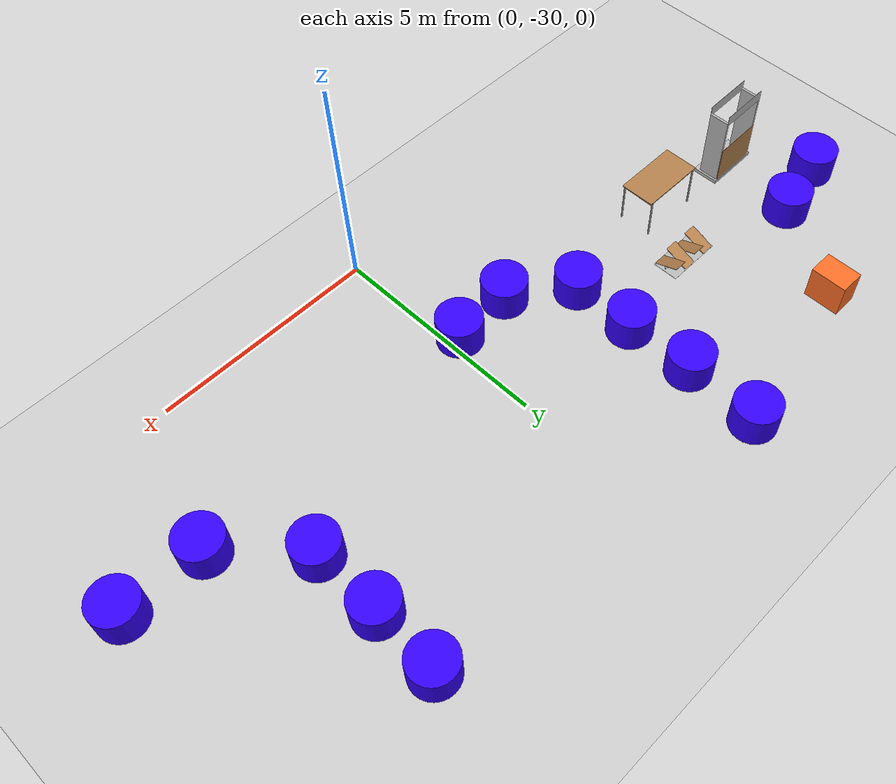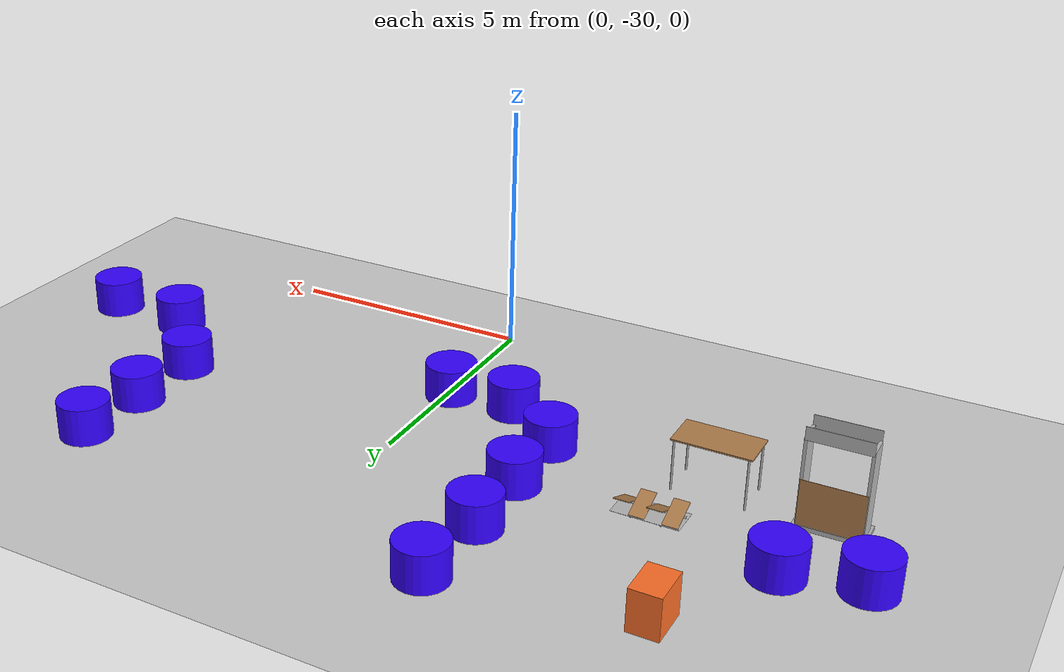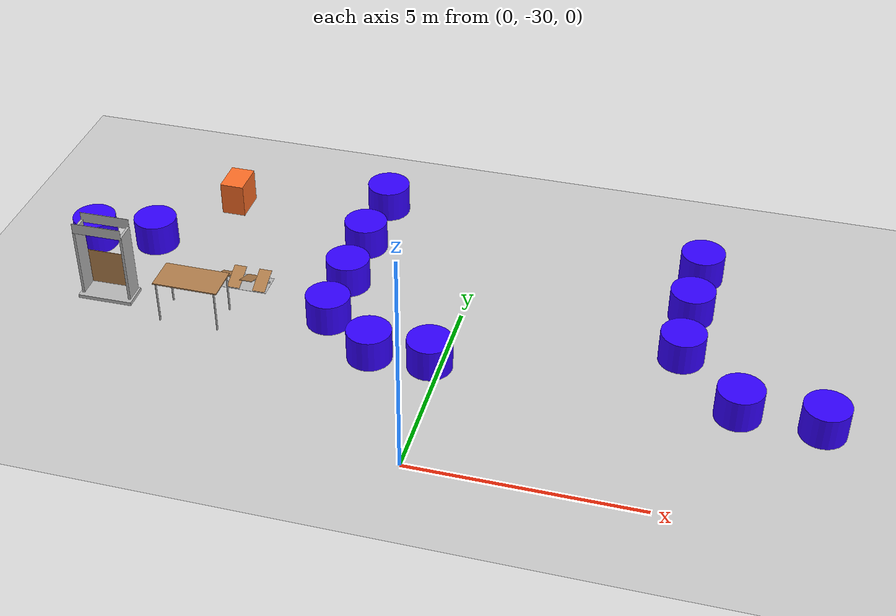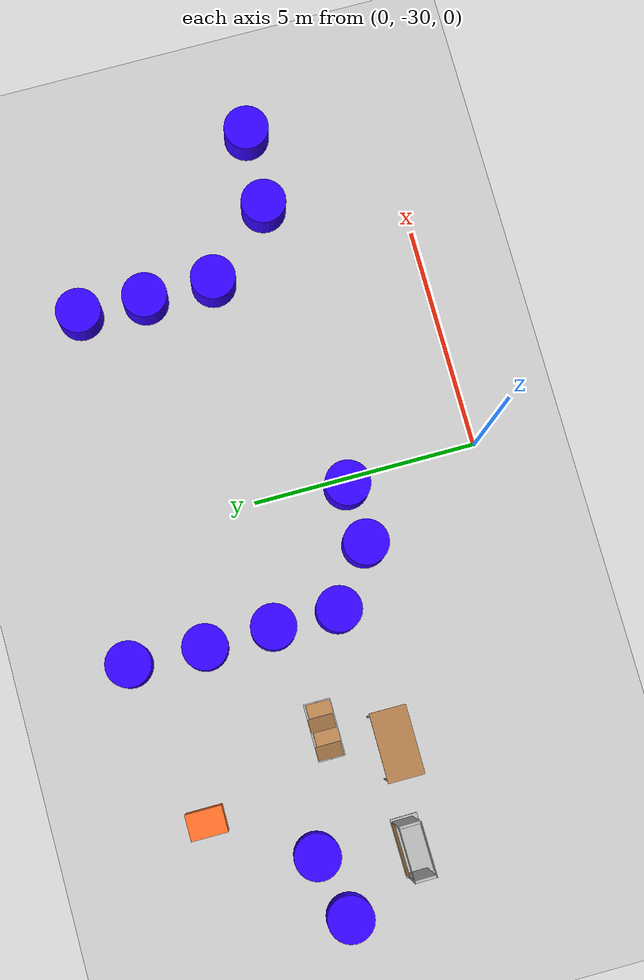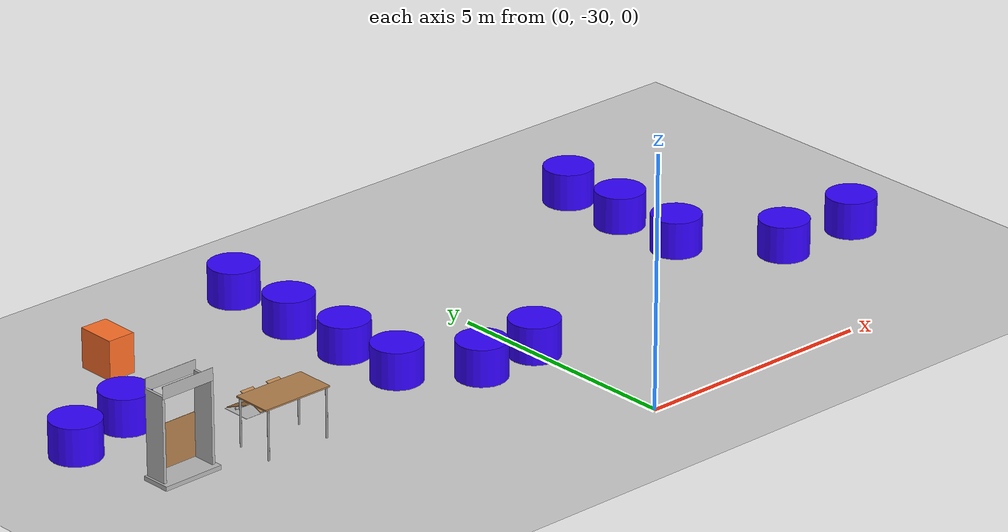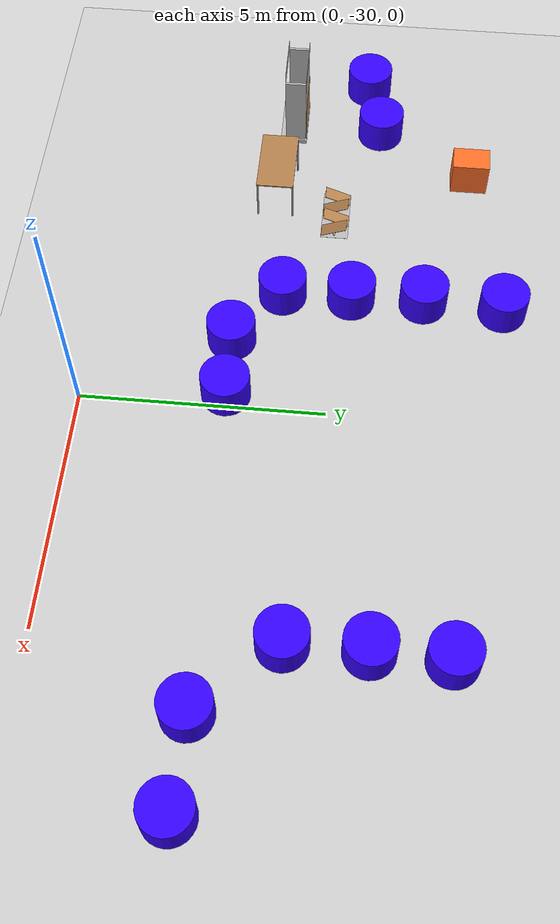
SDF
<sdf version="1.7">
 <world name="default">
  <model name="ground_plane">
   <static>1</static>
   <link name="link">
    <collision name="collision">
     <geometry><plane><normal>0 0 1</normal><size>100 100</size></plane></geometry>
     <surface>
      <contact><collide_bitmask>65535</collide_bitmask></contact>
      <friction><ode><mu>100</mu><mu2>50</mu2></ode></friction>
     </surface>
    </collision>
    <visual name="visual">
     <cast_shadows>0</cast_shadows>
     <geometry><plane><normal>0 0 1</normal><size>100 100</size></plane></geometry>
     <material>
      <script><uri>file://media/materials/scripts/gazebo.material</uri><name>Gazebo/Grey</name></script>
     </material>
    </visual>
   </link>
  </model>
  <model name="table">
   <static>1</static>
   <link name="link">
    <collision name="surface">
     <pose>0 0 1 0 -0 0</pose>
     <geometry><box><size>1.5 0.8 0.03</size></box></geometry>
     <surface><friction><ode><mu>0.6</mu><mu2>0.6</mu2></ode></friction></surface>
    </collision>
    <visual name="visual1">
     <pose>0 0 1 0 -0 0</pose>
     <geometry><box><size>1.5 0.8 0.03</size></box></geometry>
     <material>
      <script><uri>file://media/materials/scripts/gazebo.material</uri><name>Gazebo/Wood</name></script>
     </material>
    </visual>
    <collision name="front_left_leg">
     <pose>0.68 0.38 0.5 0 -0 0</pose>
     <geometry><cylinder><radius>0.02</radius><length>1</length></cylinder></geometry>
    </collision>
    <visual name="front_left_leg">
     <pose>0.68 0.38 0.5 0 -0 0</pose>
     <geometry><cylinder><radius>0.02</radius><length>1</length></cylinder></geometry>
     <material>
      <script><uri>file://media/materials/scripts/gazebo.material</uri><name>Gazebo/Grey</name></script>
     </material>
    </visual>
    <collision name="front_right_leg">
     <pose>0.68 -0.38 0.5 0 -0 0</pose>
     <geometry><cylinder><radius>0.02</radius><length>1</length></cylinder></geometry>
    </collision>
    <visual name="front_right_leg">
     <pose>0.68 -0.38 0.5 0 -0 0</pose>
     <geometry><cylinder><radius>0.02</radius><length>1</length></cylinder></geometry>
     <material>
      <script><uri>file://media/materials/scripts/gazebo.material</uri><name>Gazebo/Grey</name></script>
     </material>
    </visual>
    <collision name="back_right_leg">
     <pose>-0.68 -0.38 0.5 0 -0 0</pose>
     <geometry><cylinder><radius>0.02</radius><length>1</length></cylinder></geometry>
    </collision>
    <visual name="back_right_leg">
     <pose>-0.68 -0.38 0.5 0 -0 0</pose>
     <geometry><cylinder><radius>0.02</radius><length>1</length></cylinder></geometry>
     <material>
      <script><uri>file://media/materials/scripts/gazebo.material</uri><name>Gazebo/Grey</name></script>
     </material>
    </visual>
    <collision name="back_left_leg">
     <pose>-0.68 0.38 0.5 0 -0 0</pose>
     <geometry><cylinder><radius>0.02</radius><length>1</length></cylinder></geometry>
    </collision>
    <visual name="back_left_leg">
     <pose>-0.68 0.38 0.5 0 -0 0</pose>
     <geometry><cylinder><radius>0.02</radius><length>1</length></cylinder></geometry>
     <material>
      <script><uri>file://media/materials/scripts/gazebo.material</uri><name>Gazebo/Grey</name></script>
     </material>
    </visual>
   </link>
   <pose>-5.79541 -26.5102 0 0 -0 0</pose>
  </model>
  <model name="frc2016_chevaldefrise">
   <link name="base">
    <inertial>
     <mass>10</mass>
     <pose>0 0 0.15672 0 -0 0</pose>
     <inertia><ixx>0.380221</ixx><ixy>0</ixy><ixz>0</ixz><iyy>1.43365</iyy><iyz>0</iyz><izz>1.64745</izz></inertia>
    </inertial>
    <visual name="platform">
     <pose>0 0 0.06968 0 -0 0</pose>
     <geometry><box><size>1.27 0.5969 0.003175</size></box></geometry>
    </visual>
    <collision name="platform">
     <pose>0 0 0.06968 0 -0 0</pose>
     <geometry><box><size>1.27 0.5969 0.003175</size></box></geometry>
    </collision>
    <visual name="bar">
     <pose>0 0 0.16855 0 1.5707 0</pose>
     <geometry><cylinder><radius>0.02108</radius><length>1.273</length></cylinder></geometry>
    </visual>
    <collision name="bar">
     <pose>0 0 0.16855 0 1.5707 0</pose>
     <geometry><cylinder><radius>0.02108</radius><length>1.27</length></cylinder></geometry>
    </collision>
    <visual name="castor1">
     <pose>-0.45653 -0.16581 0.03175 0 -0 0</pose>
     <geometry><sphere><radius>0.03175</radius></sphere></geometry>
    </visual>
    <collision name="castor1">
     <pose>-0.45653 -0.16581 0.03175 0 -0 0</pose>
     <geometry><sphere><radius>0.03175</radius></sphere></geometry>
    </collision>
    <visual name="castor2">
     <pose>-0.27855 0.21408 0.03175 0 -0 0</pose>
     <geometry><sphere><radius>0.03175</radius></sphere></geometry>
    </visual>
    <collision name="castor2">
     <pose>-0.27855 0.21408 0.03175 0 -0 0</pose>
     <geometry><sphere><radius>0.03175</radius></sphere></geometry>
    </collision>
    <visual name="castor3">
     <pose>0.28191 0.21419 0.03175 0 -0 0</pose>
     <geometry><sphere><radius>0.03175</radius></sphere></geometry>
    </visual>
    <collision name="castor3">
     <pose>0.28191 0.21419 0.03175 0 -0 0</pose>
     <geometry><sphere><radius>0.03175</radius></sphere></geometry>
    </collision>
    <visual name="castor4">
     <pose>0.45965 -0.16602 0.03175 0 -0 0</pose>
     <geometry><sphere><radius>0.03175</radius></sphere></geometry>
    </visual>
    <collision name="castor4">
     <pose>0.45965 -0.16602 0.03175 0 -0 0</pose>
     <geometry><sphere><radius>0.03175</radius></sphere></geometry>
    </collision>
   </link>
   <link name="slant1">
    <pose>-0.4572 0.01307 0.1997 -0.39732 0 0</pose>
    <inertial>
     <pose>0 0.1 0 0 -0 0</pose>
     <mass>2</mass>
     <inertia>
      <ixx>0.0606857</ixx>
      <ixy>0</ixy>
      <ixz>0</ixz>
      <iyy>0.0148723</iyy>
      <iyz>0</iyz>
      <izz>0.0755042</izz>
     </inertia>
    </inertial>
    <visual name="visual">
     <geometry><box><size>0.29845 0.593285 0.0127</size></box></geometry>
     <material><script><name>Gazebo/WoodFloor</name><uri>__default__</uri></script></material>
    </visual>
    <collision name="collision"><geometry><box><size>0.29845 0.593285 0.0127</size></box></geometry></collision>
   </link>
   <link name="slant2">
    <pose>-0.1524 -0.01307 0.1997 0.39732 -0 0</pose>
    <inertial>
     <mass>2</mass>
     <pose>0 -0.1 0 0 -0 0</pose>
     <inertia>
      <ixx>0.0606857</ixx>
      <ixy>0</ixy>
      <ixz>0</ixz>
      <iyy>0.0148723</iyy>
      <iyz>0</iyz>
      <izz>0.0755042</izz>
     </inertia>
    </inertial>
    <visual name="visual">
     <geometry><box><size>0.29845 0.593285 0.0127</size></box></geometry>
     <material><script><name>Gazebo/WoodFloor</name><uri>__default__</uri></script></material>
    </visual>
    <collision name="collision"><geometry><box><size>0.29845 0.593285 0.0127</size></box></geometry></collision>
   </link>
   <link name="slant3">
    <pose>0.1524 0.01307 0.1997 -0.39732 0 0</pose>
    <inertial>
     <pose>0 0.1 0 0 -0 0</pose>
     <mass>2</mass>
     <inertia>
      <ixx>0.0606857</ixx>
      <ixy>0</ixy>
      <ixz>0</ixz>
      <iyy>0.0148723</iyy>
      <iyz>0</iyz>
      <izz>0.0755042</izz>
     </inertia>
    </inertial>
    <visual name="visual">
     <geometry><box><size>0.29845 0.593285 0.0127</size></box></geometry>
     <material><script><name>Gazebo/WoodFloor</name><uri>__default__</uri></script></material>
    </visual>
    <collision name="collision"><geometry><box><size>0.29845 0.593285 0.0127</size></box></geometry></collision>
   </link>
   <link name="slant4">
    <pose>0.4572 -0.01307 0.1997 0.39732 -0 0</pose>
    <inertial>
     <pose>0 -0.1 0 0 -0 0</pose>
     <mass>2</mass>
     <inertia>
      <ixx>0.0606857</ixx>
      <ixy>0</ixy>
      <ixz>0</ixz>
      <iyy>0.0148723</iyy>
      <iyz>0</iyz>
      <izz>0.0755042</izz>
     </inertia>
    </inertial>
    <visual name="visual">
     <geometry><box><size>0.29845 0.593285 0.0127</size></box></geometry>
     <material><script><name>Gazebo/WoodFloor</name><uri>__default__</uri></script></material>
    </visual>
    <collision name="collision"><geometry><box><size>0.29845 0.593285 0.0127</size></box></geometry></collision>
   </link>
   <joint name="slant1_joint" type="revolute">
    <parent>base</parent>
    <child>slant1</child>
    <axis>
     <xyz>1 0 0</xyz>
     <limit><lower>0</lower><upper>1.5707</upper></limit>
     <dynamics><spring_reference>0</spring_reference><spring_stiffness>0</spring_stiffness></dynamics>
    </axis>
   </joint>
   <joint name="slant2_joint" type="revolute">
    <parent>base</parent>
    <child>slant2</child>
    <axis>
     <xyz>1 0 0</xyz>
     <limit><lower>-1.5707</lower><upper>0</upper></limit>
     <dynamics><spring_reference>0</spring_reference><spring_stiffness>0</spring_stiffness></dynamics>
    </axis>
   </joint>
   <joint name="slant3_joint" type="revolute">
    <parent>base</parent>
    <child>slant3</child>
    <axis>
     <xyz>1 0 0</xyz>
     <limit><lower>0</lower><upper>1.5707</upper></limit>
     <dynamics><spring_reference>0</spring_reference><spring_stiffness>0</spring_stiffness></dynamics>
    </axis>
   </joint>
   <joint name="slant4_joint" type="revolute">
    <parent>base</parent>
    <child>slant4</child>
    <axis>
     <xyz>1 0 0</xyz>
     <limit><lower>-1.5707</lower><upper>0</upper></limit>
     <dynamics><spring_reference>0</spring_reference><spring_stiffness>0</spring_stiffness></dynamics>
    </axis>
   </joint>
   <pose>-5.13884 -25.1568 -0 0 -0 3e-06</pose>
  </model>
  <model name="frc2016_drawbridge">
   <link name="base">
    <inertial>
     <mass>10</mass>
     <pose>0 0 1 0 -0 0</pose>
     <inertia><ixx>3.64907</ixx><ixy>0</ixy><ixz>0</ixz><iyy>4.67075</iyy><iyz>0</iyz><izz>1.66649</izz></inertia>
    </inertial>
    <visual name="platform">
     <pose>0 0 0.0425 0 -0 0</pose>
     <geometry><box><size>1.27 0.5969 0.085</size></box></geometry>
    </visual>
    <collision name="platform">
     <pose>0 0 0.0425 0 -0 0</pose>
     <geometry><box><size>1.27 0.5969 0.085</size></box></geometry>
    </collision>
    <visual name="right_wall">
     <pose>0.55879 0.04444 0.889 0 -0 0</pose>
     <geometry><box><size>0.05715 0.45698 1.77165</size></box></geometry>
    </visual>
    <collision name="right_wall">
     <pose>0.55879 0.04444 0.889 0 -0 0</pose>
     <geometry><box><size>0.05715 0.45698 1.77165</size></box></geometry>
    </collision>
    <visual name="left_wall">
     <pose>-0.55879 0.04444 0.889 0 -0 0</pose>
     <geometry><box><size>0.05715 0.45698 1.77165</size></box></geometry>
    </visual>
    <collision name="left_wall">
     <pose>-0.55879 0.04444 0.889 0 -0 0</pose>
     <geometry><box><size>0.05715 0.45698 1.77165</size></box></geometry>
    </collision>
    <visual name="front_upper_wall">
     <pose>0 0.27611 1.84286 0 -0 0</pose>
     <geometry><box><size>1.1557 0.006347 0.254</size></box></geometry>
    </visual>
    <collision name="front_upper_wall">
     <pose>0 0.27611 1.84286 0 -0 0</pose>
     <geometry><box><size>1.1557 0.006347 0.254</size></box></geometry>
    </collision>
    <visual name="back_upper_wall">
     <pose>0 -0.18722 1.84286 0 -0 0</pose>
     <geometry><box><size>1.1557 0.006347 0.254</size></box></geometry>
    </visual>
    <collision name="back_upper_wall">
     <pose>0 -0.18722 1.84286 0 -0 0</pose>
     <geometry><box><size>1.1557 0.006347 0.254</size></box></geometry>
    </collision>
   </link>
   <link name="bridge">
    <pose>0 0.28245 0.50577 0 -0 0</pose>
    <inertial>
     <mass>2</mass>
     <pose>0 -0.28245 -0.50577 0 -0 0</pose>
     <inertia>
      <ixx>0.139361</ixx>
      <ixy>0</ixy>
      <ixz>0</ixz>
      <iyy>0.357088</iyy>
      <iyz>0</iyz>
      <izz>0.217741</izz>
     </inertia>
    </inertial>
    <visual name="visual">
     <geometry><box><size>1.14298 0.006347 0.9144</size></box></geometry>
     <material><script><name>Gazebo/WoodFloor</name><uri>__default__</uri></script></material>
    </visual>
    <collision name="collision"><geometry><box><size>1.14298 0.006347 0.9144</size></box></geometry></collision>
   </link>
   <joint name="bridge_joint" type="revolute">
    <pose>0 0 -0.4172 0 -0 0</pose>
    <parent>base</parent>
    <child>bridge</child>
    <axis>
     <xyz>1 0 0</xyz>
     <limit><lower>-2</lower><upper>0</upper></limit>
     <dynamics><spring_reference>0</spring_reference><spring_stiffness>0</spring_stiffness></dynamics>
    </axis>
   </joint>
   <pose>-7.96106 -26.3045 -3e-06 -2e-06 -4e-06 0.013712</pose>
  </model>
  <model name="blue_cylinder_2_0">
   <link name="link">
    <inertial>
     <mass>1</mass>
     <inertia><ixx>0.145833</ixx><ixy>0</ixy><ixz>0</ixz><iyy>0.145833</iyy><iyz>0</iyz><izz>0.125</izz></inertia>
    </inertial>
    <visual name="visual">
     <geometry><cylinder><radius>0.5</radius><length>0.74</length></cylinder></geometry>
     <material>
      <script><name>Gazebo/Grey</name><uri>file://media/materials/scripts/gazebo.material</uri></script>
      <shader type="pixel"><normal_map>__default__</normal_map></shader>
      <ambient>0.2 0 1 1</ambient>
      <diffuse>0.2 0 1 1</diffuse>
      <specular>0.2 0 1 1</specular>
      <emissive>0 0 0 1</emissive>
     </material>
    </visual>
    <collision name="collision">
     <geometry><cylinder><radius>0.5</radius><length>1</length></cylinder></geometry>
     <surface>
      <friction>
       <ode><mu>1</mu><mu2>1</mu2><fdir1>0 0 0</fdir1><slip1>0</slip1><slip2>0</slip2></ode>
       <torsional>
        <coefficient>1</coefficient>
        <patch_radius>0</patch_radius>
        <surface_radius>0</surface_radius>
        <use_patch_radius>1</use_patch_radius>
        <ode><slip>0</slip></ode>
       </torsional>
      </friction>
      <bounce><restitution_coefficient>0</restitution_coefficient><threshold>1e+06</threshold></bounce>
      <contact>
       <collide_without_contact>0</collide_without_contact>
       <collide_without_contact_bitmask>1</collide_without_contact_bitmask>
       <collide_bitmask>1</collide_bitmask>
       <ode>
        <soft_cfm>0</soft_cfm>
        <soft_erp>0.2</soft_erp>
        <kp>1e+13</kp>
        <kd>1</kd>
        <max_vel>0.01</max_vel>
        <min_depth>0</min_depth>
       </ode>
       <bullet>
        <split_impulse>1</split_impulse>
        <split_impulse_penetration_threshold>-0.01</split_impulse_penetration_threshold>
        <soft_cfm>0</soft_cfm>
        <soft_erp>0.2</soft_erp>
        <kp>1e+13</kp>
        <kd>1</kd>
       </bullet>
      </contact>
     </surface>
    </collision>
   </link>
   <static>0</static>
   <pose>4.95231 -25.3965 0.5 0 -0 0</pose>
  </model>
  <model name="blue_cylinder_2_1">
   <link name="link">
    <inertial>
     <mass>1</mass>
     <inertia><ixx>0.145833</ixx><ixy>0</ixy><ixz>0</ixz><iyy>0.145833</iyy><iyz>0</iyz><izz>0.125</izz></inertia>
    </inertial>
    <visual name="visual">
     <geometry><cylinder><radius>0.5</radius><length>0.74</length></cylinder></geometry>
     <material>
      <script><name>Gazebo/Grey</name><uri>file://media/materials/scripts/gazebo.material</uri></script>
      <shader type="pixel"><normal_map>__default__</normal_map></shader>
      <ambient>0.2 0 1 1</ambient>
      <diffuse>0.2 0 1 1</diffuse>
      <specular>0.2 0 1 1</specular>
      <emissive>0 0 0 1</emissive>
     </material>
    </visual>
    <collision name="collision">
     <geometry><cylinder><radius>0.5</radius><length>1</length></cylinder></geometry>
     <surface>
      <friction>
       <ode><mu>1</mu><mu2>1</mu2><fdir1>0 0 0</fdir1><slip1>0</slip1><slip2>0</slip2></ode>
       <torsional>
        <coefficient>1</coefficient>
        <patch_radius>0</patch_radius>
        <surface_radius>0</surface_radius>
        <use_patch_radius>1</use_patch_radius>
        <ode><slip>0</slip></ode>
       </torsional>
      </friction>
      <bounce><restitution_coefficient>0</restitution_coefficient><threshold>1e+06</threshold></bounce>
      <contact>
       <collide_without_contact>0</collide_without_contact>
       <collide_without_contact_bitmask>1</collide_without_contact_bitmask>
       <collide_bitmask>1</collide_bitmask>
       <ode>
        <soft_cfm>0</soft_cfm>
        <soft_erp>0.2</soft_erp>
        <kp>1e+13</kp>
        <kd>1</kd>
        <max_vel>0.01</max_vel>
        <min_depth>0</min_depth>
       </ode>
       <bullet>
        <split_impulse>1</split_impulse>
        <split_impulse_penetration_threshold>-0.01</split_impulse_penetration_threshold>
        <soft_cfm>0</soft_cfm>
        <soft_erp>0.2</soft_erp>
        <kp>1e+13</kp>
        <kd>1</kd>
       </bullet>
      </contact>
     </surface>
    </collision>
   </link>
   <static>0</static>
   <pose>4.95231 -23.8469 0.5 0 -0 0</pose>
  </model>
  <model name="blue_cylinder_2_2">
   <link name="link">
    <inertial>
     <mass>1</mass>
     <inertia><ixx>0.145833</ixx><ixy>0</ixy><ixz>0</ixz><iyy>0.145833</iyy><iyz>0</iyz><izz>0.125</izz></inertia>
    </inertial>
    <visual name="visual">
     <geometry><cylinder><radius>0.5</radius><length>0.74</length></cylinder></geometry>
     <material>
      <script><name>Gazebo/Grey</name><uri>file://media/materials/scripts/gazebo.material</uri></script>
      <shader type="pixel"><normal_map>__default__</normal_map></shader>
      <ambient>0.2 0 1 1</ambient>
      <diffuse>0.2 0 1 1</diffuse>
      <specular>0.2 0 1 1</specular>
      <emissive>0 0 0 1</emissive>
     </material>
    </visual>
    <collision name="collision">
     <geometry><cylinder><radius>0.5</radius><length>1</length></cylinder></geometry>
     <surface>
      <friction>
       <ode><mu>1</mu><mu2>1</mu2><fdir1>0 0 0</fdir1><slip1>0</slip1><slip2>0</slip2></ode>
       <torsional>
        <coefficient>1</coefficient>
        <patch_radius>0</patch_radius>
        <surface_radius>0</surface_radius>
        <use_patch_radius>1</use_patch_radius>
        <ode><slip>0</slip></ode>
       </torsional>
      </friction>
      <bounce><restitution_coefficient>0</restitution_coefficient><threshold>1e+06</threshold></bounce>
      <contact>
       <collide_without_contact>0</collide_without_contact>
       <collide_without_contact_bitmask>1</collide_without_contact_bitmask>
       <collide_bitmask>1</collide_bitmask>
       <ode>
        <soft_cfm>0</soft_cfm>
        <soft_erp>0.2</soft_erp>
        <kp>1e+13</kp>
        <kd>1</kd>
        <max_vel>0.01</max_vel>
        <min_depth>0</min_depth>
       </ode>
       <bullet>
        <split_impulse>1</split_impulse>
        <split_impulse_penetration_threshold>-0.01</split_impulse_penetration_threshold>
        <soft_cfm>0</soft_cfm>
        <soft_erp>0.2</soft_erp>
        <kp>1e+13</kp>
        <kd>1</kd>
       </bullet>
      </contact>
     </surface>
    </collision>
   </link>
   <static>0</static>
   <pose>4.98848 -22.3695 0.5 0 -0 0</pose>
  </model>
  <model name="blue_cylinder_2_4">
   <link name="link">
    <inertial>
     <mass>1</mass>
     <inertia><ixx>0.145833</ixx><ixy>0</ixy><ixz>0</ixz><iyy>0.145833</iyy><iyz>0</iyz><izz>0.125</izz></inertia>
    </inertial>
    <visual name="visual">
     <geometry><cylinder><radius>0.5</radius><length>0.74</length></cylinder></geometry>
     <material>
      <script><name>Gazebo/Grey</name><uri>file://media/materials/scripts/gazebo.material</uri></script>
      <shader type="pixel"><normal_map>__default__</normal_map></shader>
      <ambient>0.2 0 1 1</ambient>
      <diffuse>0.2 0 1 1</diffuse>
      <specular>0.2 0 1 1</specular>
      <emissive>0 0 0 1</emissive>
     </material>
    </visual>
    <collision name="collision">
     <geometry><cylinder><radius>0.5</radius><length>1</length></cylinder></geometry>
     <surface>
      <friction>
       <ode><mu>1</mu><mu2>1</mu2><fdir1>0 0 0</fdir1><slip1>0</slip1><slip2>0</slip2></ode>
       <torsional>
        <coefficient>1</coefficient>
        <patch_radius>0</patch_radius>
        <surface_radius>0</surface_radius>
        <use_patch_radius>1</use_patch_radius>
        <ode><slip>0</slip></ode>
       </torsional>
      </friction>
      <bounce><restitution_coefficient>0</restitution_coefficient><threshold>1e+06</threshold></bounce>
      <contact>
       <collide_without_contact>0</collide_without_contact>
       <collide_without_contact_bitmask>1</collide_without_contact_bitmask>
       <collide_bitmask>1</collide_bitmask>
       <ode>
        <soft_cfm>0</soft_cfm>
        <soft_erp>0.2</soft_erp>
        <kp>1e+13</kp>
        <kd>1</kd>
        <max_vel>0.01</max_vel>
        <min_depth>0</min_depth>
       </ode>
       <bullet>
        <split_impulse>1</split_impulse>
        <split_impulse_penetration_threshold>-0.01</split_impulse_penetration_threshold>
        <soft_cfm>0</soft_cfm>
        <soft_erp>0.2</soft_erp>
        <kp>1e+13</kp>
        <kd>1</kd>
       </bullet>
      </contact>
     </surface>
    </collision>
   </link>
   <static>0</static>
   <pose>8.05161 -26.982 0.5 0 -0 0</pose>
  </model>
  <model name="blue_cylinder_2_5">
   <link name="link">
    <inertial>
     <mass>1</mass>
     <inertia><ixx>0.145833</ixx><ixy>0</ixy><ixz>0</ixz><iyy>0.145833</iyy><iyz>0</iyz><izz>0.125</izz></inertia>
    </inertial>
    <visual name="visual">
     <geometry><cylinder><radius>0.5</radius><length>0.74</length></cylinder></geometry>
     <material>
      <script><name>Gazebo/Grey</name><uri>file://media/materials/scripts/gazebo.material</uri></script>
      <shader type="pixel"><normal_map>__default__</normal_map></shader>
      <ambient>0.2 0 1 1</ambient>
      <diffuse>0.2 0 1 1</diffuse>
      <specular>0.2 0 1 1</specular>
      <emissive>0 0 0 1</emissive>
     </material>
    </visual>
    <collision name="collision">
     <geometry><cylinder><radius>0.5</radius><length>1</length></cylinder></geometry>
     <surface>
      <friction>
       <ode><mu>1</mu><mu2>1</mu2><fdir1>0 0 0</fdir1><slip1>0</slip1><slip2>0</slip2></ode>
       <torsional>
        <coefficient>1</coefficient>
        <patch_radius>0</patch_radius>
        <surface_radius>0</surface_radius>
        <use_patch_radius>1</use_patch_radius>
        <ode><slip>0</slip></ode>
       </torsional>
      </friction>
      <bounce><restitution_coefficient>0</restitution_coefficient><threshold>1e+06</threshold></bounce>
      <contact>
       <collide_without_contact>0</collide_without_contact>
       <collide_without_contact_bitmask>1</collide_without_contact_bitmask>
       <collide_bitmask>1</collide_bitmask>
       <ode>
        <soft_cfm>0</soft_cfm>
        <soft_erp>0.2</soft_erp>
        <kp>1e+13</kp>
        <kd>1</kd>
        <max_vel>0.01</max_vel>
        <min_depth>0</min_depth>
       </ode>
       <bullet>
        <split_impulse>1</split_impulse>
        <split_impulse_penetration_threshold>-0.01</split_impulse_penetration_threshold>
        <soft_cfm>0</soft_cfm>
        <soft_erp>0.2</soft_erp>
        <kp>1e+13</kp>
        <kd>1</kd>
       </bullet>
      </contact>
     </surface>
    </collision>
   </link>
   <static>0</static>
   <pose>6.32187 -26.9099 0.5 0 -0 0</pose>
  </model>
  <model name="blue_cylinder_2_8">
   <link name="link">
    <inertial>
     <mass>1</mass>
     <inertia><ixx>0.145833</ixx><ixy>0</ixy><ixz>0</ixz><iyy>0.145833</iyy><iyz>0</iyz><izz>0.125</izz></inertia>
    </inertial>
    <visual name="visual">
     <geometry><cylinder><radius>0.5</radius><length>0.74</length></cylinder></geometry>
     <material>
      <script><name>Gazebo/Grey</name><uri>file://media/materials/scripts/gazebo.material</uri></script>
      <shader type="pixel"><normal_map>__default__</normal_map></shader>
      <ambient>0.2 0 1 1</ambient>
      <diffuse>0.2 0 1 1</diffuse>
      <specular>0.2 0 1 1</specular>
      <emissive>0 0 0 1</emissive>
     </material>
    </visual>
    <collision name="collision">
     <geometry><cylinder><radius>0.5</radius><length>1</length></cylinder></geometry>
     <surface>
      <friction>
       <ode><mu>1</mu><mu2>1</mu2><fdir1>0 0 0</fdir1><slip1>0</slip1><slip2>0</slip2></ode>
       <torsional>
        <coefficient>1</coefficient>
        <patch_radius>0</patch_radius>
        <surface_radius>0</surface_radius>
        <use_patch_radius>1</use_patch_radius>
        <ode><slip>0</slip></ode>
       </torsional>
      </friction>
      <bounce><restitution_coefficient>0</restitution_coefficient><threshold>1e+06</threshold></bounce>
      <contact>
       <collide_without_contact>0</collide_without_contact>
       <collide_without_contact_bitmask>1</collide_without_contact_bitmask>
       <collide_bitmask>1</collide_bitmask>
       <ode>
        <soft_cfm>0</soft_cfm>
        <soft_erp>0.2</soft_erp>
        <kp>1e+13</kp>
        <kd>1</kd>
        <max_vel>0.01</max_vel>
        <min_depth>0</min_depth>
       </ode>
       <bullet>
        <split_impulse>1</split_impulse>
        <split_impulse_penetration_threshold>-0.01</split_impulse_penetration_threshold>
        <soft_cfm>0</soft_cfm>
        <soft_erp>0.2</soft_erp>
        <kp>1e+13</kp>
        <kd>1</kd>
       </bullet>
      </contact>
     </surface>
    </collision>
   </link>
   <static>0</static>
   <pose>-0.20075 -27.0181 0.5 0 -0 0</pose>
  </model>
  <model name="blue_cylinder_2_9">
   <link name="link">
    <inertial>
     <mass>1</mass>
     <inertia><ixx>0.145833</ixx><ixy>0</ixy><ixz>0</ixz><iyy>0.145833</iyy><iyz>0</iyz><izz>0.125</izz></inertia>
    </inertial>
    <visual name="visual">
     <geometry><cylinder><radius>0.5</radius><length>0.74</length></cylinder></geometry>
     <material>
      <script><name>Gazebo/Grey</name><uri>file://media/materials/scripts/gazebo.material</uri></script>
      <shader type="pixel"><normal_map>__default__</normal_map></shader>
      <ambient>0.2 0 1 1</ambient>
      <diffuse>0.2 0 1 1</diffuse>
      <specular>0.2 0 1 1</specular>
      <emissive>0 0 0 1</emissive>
     </material>
    </visual>
    <collision name="collision">
     <geometry><cylinder><radius>0.5</radius><length>1</length></cylinder></geometry>
     <surface>
      <friction>
       <ode><mu>1</mu><mu2>1</mu2><fdir1>0 0 0</fdir1><slip1>0</slip1><slip2>0</slip2></ode>
       <torsional>
        <coefficient>1</coefficient>
        <patch_radius>0</patch_radius>
        <surface_radius>0</surface_radius>
        <use_patch_radius>1</use_patch_radius>
        <ode><slip>0</slip></ode>
       </torsional>
      </friction>
      <bounce><restitution_coefficient>0</restitution_coefficient><threshold>1e+06</threshold></bounce>
      <contact>
       <collide_without_contact>0</collide_without_contact>
       <collide_without_contact_bitmask>1</collide_without_contact_bitmask>
       <collide_bitmask>1</collide_bitmask>
       <ode>
        <soft_cfm>0</soft_cfm>
        <soft_erp>0.2</soft_erp>
        <kp>1e+13</kp>
        <kd>1</kd>
        <max_vel>0.01</max_vel>
        <min_depth>0</min_depth>
       </ode>
       <bullet>
        <split_impulse>1</split_impulse>
        <split_impulse_penetration_threshold>-0.01</split_impulse_penetration_threshold>
        <soft_cfm>0</soft_cfm>
        <soft_erp>0.2</soft_erp>
        <kp>1e+13</kp>
        <kd>1</kd>
       </bullet>
      </contact>
     </surface>
    </collision>
   </link>
   <static>0</static>
   <pose>-1.53379 -27.0541 0.5 0 -0 0</pose>
  </model>
  <model name="blue_cylinder_2_10">
   <link name="link">
    <inertial>
     <mass>1</mass>
     <inertia><ixx>0.145833</ixx><ixy>0</ixy><ixz>0</ixz><iyy>0.145833</iyy><iyz>0</iyz><izz>0.125</izz></inertia>
    </inertial>
    <visual name="visual">
     <geometry><cylinder><radius>0.5</radius><length>0.74</length></cylinder></geometry>
     <material>
      <script><name>Gazebo/Grey</name><uri>file://media/materials/scripts/gazebo.material</uri></script>
      <shader type="pixel"><normal_map>__default__</normal_map></shader>
      <ambient>0.2 0 1 1</ambient>
      <diffuse>0.2 0 1 1</diffuse>
      <specular>0.2 0 1 1</specular>
      <emissive>0 0 0 1</emissive>
     </material>
    </visual>
    <collision name="collision">
     <geometry><cylinder><radius>0.5</radius><length>1</length></cylinder></geometry>
     <surface>
      <friction>
       <ode><mu>1</mu><mu2>1</mu2><fdir1>0 0 0</fdir1><slip1>0</slip1><slip2>0</slip2></ode>
       <torsional>
        <coefficient>1</coefficient>
        <patch_radius>0</patch_radius>
        <surface_radius>0</surface_radius>
        <use_patch_radius>1</use_patch_radius>
        <ode><slip>0</slip></ode>
       </torsional>
      </friction>
      <bounce><restitution_coefficient>0</restitution_coefficient><threshold>1e+06</threshold></bounce>
      <contact>
       <collide_without_contact>0</collide_without_contact>
       <collide_without_contact_bitmask>1</collide_without_contact_bitmask>
       <collide_bitmask>1</collide_bitmask>
       <ode>
        <soft_cfm>0</soft_cfm>
        <soft_erp>0.2</soft_erp>
        <kp>1e+13</kp>
        <kd>1</kd>
        <max_vel>0.01</max_vel>
        <min_depth>0</min_depth>
       </ode>
       <bullet>
        <split_impulse>1</split_impulse>
        <split_impulse_penetration_threshold>-0.01</split_impulse_penetration_threshold>
        <soft_cfm>0</soft_cfm>
        <soft_erp>0.2</soft_erp>
        <kp>1e+13</kp>
        <kd>1</kd>
       </bullet>
      </contact>
     </surface>
    </collision>
   </link>
   <static>0</static>
   <pose>-2.75902 -26.1172 0.5 0 -0 0</pose>
  </model>
  <model name="blue_cylinder_2_11">
   <link name="link">
    <inertial>
     <mass>1</mass>
     <inertia><ixx>0.145833</ixx><ixy>0</ixy><ixz>0</ixz><iyy>0.145833</iyy><iyz>0</iyz><izz>0.125</izz></inertia>
    </inertial>
    <visual name="visual">
     <geometry><cylinder><radius>0.5</radius><length>0.74</length></cylinder></geometry>
     <material>
      <script><name>Gazebo/Grey</name><uri>file://media/materials/scripts/gazebo.material</uri></script>
      <shader type="pixel"><normal_map>__default__</normal_map></shader>
      <ambient>0.2 0 1 1</ambient>
      <diffuse>0.2 0 1 1</diffuse>
      <specular>0.2 0 1 1</specular>
      <emissive>0 0 0 1</emissive>
     </material>
    </visual>
    <collision name="collision">
     <geometry><cylinder><radius>0.5</radius><length>1</length></cylinder></geometry>
     <surface>
      <friction>
       <ode><mu>1</mu><mu2>1</mu2><fdir1>0 0 0</fdir1><slip1>0</slip1><slip2>0</slip2></ode>
       <torsional>
        <coefficient>1</coefficient>
        <patch_radius>0</patch_radius>
        <surface_radius>0</surface_radius>
        <use_patch_radius>1</use_patch_radius>
        <ode><slip>0</slip></ode>
       </torsional>
      </friction>
      <bounce><restitution_coefficient>0</restitution_coefficient><threshold>1e+06</threshold></bounce>
      <contact>
       <collide_without_contact>0</collide_without_contact>
       <collide_without_contact_bitmask>1</collide_without_contact_bitmask>
       <collide_bitmask>1</collide_bitmask>
       <ode>
        <soft_cfm>0</soft_cfm>
        <soft_erp>0.2</soft_erp>
        <kp>1e+13</kp>
        <kd>1</kd>
        <max_vel>0.01</max_vel>
        <min_depth>0</min_depth>
       </ode>
       <bullet>
        <split_impulse>1</split_impulse>
        <split_impulse_penetration_threshold>-0.01</split_impulse_penetration_threshold>
        <soft_cfm>0</soft_cfm>
        <soft_erp>0.2</soft_erp>
        <kp>1e+13</kp>
        <kd>1</kd>
       </bullet>
      </contact>
     </surface>
    </collision>
   </link>
   <static>0</static>
   <pose>-2.75902 -24.6757 0.5 0 -0 0</pose>
  </model>
  <model name="blue_cylinder_2_12">
   <link name="link">
    <inertial>
     <mass>1</mass>
     <inertia><ixx>0.145833</ixx><ixy>0</ixy><ixz>0</ixz><iyy>0.145833</iyy><iyz>0</iyz><izz>0.125</izz></inertia>
    </inertial>
    <visual name="visual">
     <geometry><cylinder><radius>0.5</radius><length>0.74</length></cylinder></geometry>
     <material>
      <script><name>Gazebo/Grey</name><uri>file://media/materials/scripts/gazebo.material</uri></script>
      <shader type="pixel"><normal_map>__default__</normal_map></shader>
      <ambient>0.2 0 1 1</ambient>
      <diffuse>0.2 0 1 1</diffuse>
      <specular>0.2 0 1 1</specular>
      <emissive>0 0 0 1</emissive>
     </material>
    </visual>
    <collision name="collision">
     <geometry><cylinder><radius>0.5</radius><length>1</length></cylinder></geometry>
     <surface>
      <friction>
       <ode><mu>1</mu><mu2>1</mu2><fdir1>0 0 0</fdir1><slip1>0</slip1><slip2>0</slip2></ode>
       <torsional>
        <coefficient>1</coefficient>
        <patch_radius>0</patch_radius>
        <surface_radius>0</surface_radius>
        <use_patch_radius>1</use_patch_radius>
        <ode><slip>0</slip></ode>
       </torsional>
      </friction>
      <bounce><restitution_coefficient>0</restitution_coefficient><threshold>1e+06</threshold></bounce>
      <contact>
       <collide_without_contact>0</collide_without_contact>
       <collide_without_contact_bitmask>1</collide_without_contact_bitmask>
       <collide_bitmask>1</collide_bitmask>
       <ode>
        <soft_cfm>0</soft_cfm>
        <soft_erp>0.2</soft_erp>
        <kp>1e+13</kp>
        <kd>1</kd>
        <max_vel>0.01</max_vel>
        <min_depth>0</min_depth>
       </ode>
       <bullet>
        <split_impulse>1</split_impulse>
        <split_impulse_penetration_threshold>-0.01</split_impulse_penetration_threshold>
        <soft_cfm>0</soft_cfm>
        <soft_erp>0.2</soft_erp>
        <kp>1e+13</kp>
        <kd>1</kd>
       </bullet>
      </contact>
     </surface>
    </collision>
   </link>
   <static>0</static>
   <pose>-2.79507 -23.1622 0.5 0 -0 0</pose>
  </model>
  <model name="blue_cylinder_2_13">
   <link name="link">
    <inertial>
     <mass>1</mass>
     <inertia><ixx>0.145833</ixx><ixy>0</ixy><ixz>0</ixz><iyy>0.145833</iyy><iyz>0</iyz><izz>0.125</izz></inertia>
    </inertial>
    <visual name="visual">
     <geometry><cylinder><radius>0.5</radius><length>0.74</length></cylinder></geometry>
     <material>
      <script><name>Gazebo/Grey</name><uri>file://media/materials/scripts/gazebo.material</uri></script>
      <shader type="pixel"><normal_map>__default__</normal_map></shader>
      <ambient>0.2 0 1 1</ambient>
      <diffuse>0.2 0 1 1</diffuse>
      <specular>0.2 0 1 1</specular>
      <emissive>0 0 0 1</emissive>
     </material>
    </visual>
    <collision name="collision">
     <geometry><cylinder><radius>0.5</radius><length>1</length></cylinder></geometry>
     <surface>
      <friction>
       <ode><mu>1</mu><mu2>1</mu2><fdir1>0 0 0</fdir1><slip1>0</slip1><slip2>0</slip2></ode>
       <torsional>
        <coefficient>1</coefficient>
        <patch_radius>0</patch_radius>
        <surface_radius>0</surface_radius>
        <use_patch_radius>1</use_patch_radius>
        <ode><slip>0</slip></ode>
       </torsional>
      </friction>
      <bounce><restitution_coefficient>0</restitution_coefficient><threshold>1e+06</threshold></bounce>
      <contact>
       <collide_without_contact>0</collide_without_contact>
       <collide_without_contact_bitmask>1</collide_without_contact_bitmask>
       <collide_bitmask>1</collide_bitmask>
       <ode>
        <soft_cfm>0</soft_cfm>
        <soft_erp>0.2</soft_erp>
        <kp>1e+13</kp>
        <kd>1</kd>
        <max_vel>0.01</max_vel>
        <min_depth>0</min_depth>
       </ode>
       <bullet>
        <split_impulse>1</split_impulse>
        <split_impulse_penetration_threshold>-0.01</split_impulse_penetration_threshold>
        <soft_cfm>0</soft_cfm>
        <soft_erp>0.2</soft_erp>
        <kp>1e+13</kp>
        <kd>1</kd>
       </bullet>
      </contact>
     </surface>
    </collision>
   </link>
   <static>0</static>
   <pose>-2.7232 -21.5046 0.5 0 -0 0</pose>
  </model>
  <model name="blue_cylinder_2_17">
   <link name="link">
    <inertial>
     <mass>1</mass>
     <inertia><ixx>0.145833</ixx><ixy>0</ixy><ixz>0</ixz><iyy>0.145833</iyy><iyz>0</iyz><izz>0.125</izz></inertia>
    </inertial>
    <visual name="visual">
     <geometry><cylinder><radius>0.5</radius><length>0.74</length></cylinder></geometry>
     <material>
      <script><name>Gazebo/Grey</name><uri>file://media/materials/scripts/gazebo.material</uri></script>
      <shader type="pixel"><normal_map>__default__</normal_map></shader>
      <ambient>0.2 0 1 1</ambient>
      <diffuse>0.2 0 1 1</diffuse>
      <specular>0.2 0 1 1</specular>
      <emissive>0 0 0 1</emissive>
     </material>
    </visual>
    <collision name="collision">
     <geometry><cylinder><radius>0.5</radius><length>1</length></cylinder></geometry>
     <surface>
      <friction>
       <ode><mu>1</mu><mu2>1</mu2><fdir1>0 0 0</fdir1><slip1>0</slip1><slip2>0</slip2></ode>
       <torsional>
        <coefficient>1</coefficient>
        <patch_radius>0</patch_radius>
        <surface_radius>0</surface_radius>
        <use_patch_radius>1</use_patch_radius>
        <ode><slip>0</slip></ode>
       </torsional>
      </friction>
      <bounce><restitution_coefficient>0</restitution_coefficient><threshold>1e+06</threshold></bounce>
      <contact>
       <collide_without_contact>0</collide_without_contact>
       <collide_without_contact_bitmask>1</collide_without_contact_bitmask>
       <collide_bitmask>1</collide_bitmask>
       <ode>
        <soft_cfm>0</soft_cfm>
        <soft_erp>0.2</soft_erp>
        <kp>1e+13</kp>
        <kd>1</kd>
        <max_vel>0.01</max_vel>
        <min_depth>0</min_depth>
       </ode>
       <bullet>
        <split_impulse>1</split_impulse>
        <split_impulse_penetration_threshold>-0.01</split_impulse_penetration_threshold>
        <soft_cfm>0</soft_cfm>
        <soft_erp>0.2</soft_erp>
        <kp>1e+13</kp>
        <kd>1</kd>
       </bullet>
      </contact>
     </surface>
    </collision>
   </link>
   <static>0</static>
   <pose>-9.014 -24.634 0.499991 0 -0 0</pose>
  </model>
  <model name="orange_box_10">
   <link name="link">
    <inertial>
     <mass>1</mass>
     <inertia>
      <ixx>0.166667</ixx>
      <ixy>0</ixy>
      <ixz>0</ixz>
      <iyy>0.166667</iyy>
      <iyz>0</iyz>
      <izz>0.166667</izz>
     </inertia>
    </inertial>
    <visual name="visual">
     <geometry><box><size>0.57 0.8 0.8</size></box></geometry>
     <material>
      <script><name>Gazebo/Grey</name><uri>file://media/materials/scripts/gazebo.material</uri></script>
      <shader type="pixel"><normal_map>__default__</normal_map></shader>
      <ambient>0.698 0.369 0.176 1</ambient>
      <diffuse>1 0.435 0.153 1</diffuse>
      <specular>0.698 0.396 0.133 1</specular>
      <emissive>0.698 0.427 0.114 1</emissive>
     </material>
    </visual>
    <collision name="collision">
     <geometry><box><size>1 1 1</size></box></geometry>
     <surface>
      <friction>
       <ode><mu>1</mu><mu2>1</mu2><fdir1>0 0 0</fdir1><slip1>0</slip1><slip2>0</slip2></ode>
       <torsional>
        <coefficient>1</coefficient>
        <patch_radius>0</patch_radius>
        <surface_radius>0</surface_radius>
        <use_patch_radius>1</use_patch_radius>
        <ode><slip>0</slip></ode>
       </torsional>
      </friction>
      <bounce><restitution_coefficient>0</restitution_coefficient><threshold>1e+06</threshold></bounce>
      <contact>
       <collide_without_contact>0</collide_without_contact>
       <collide_without_contact_bitmask>1</collide_without_contact_bitmask>
       <collide_bitmask>1</collide_bitmask>
       <ode>
        <soft_cfm>0</soft_cfm>
        <soft_erp>0.2</soft_erp>
        <kp>1e+13</kp>
        <kd>1</kd>
        <max_vel>0.01</max_vel>
        <min_depth>0</min_depth>
       </ode>
       <bullet>
        <split_impulse>1</split_impulse>
        <split_impulse_penetration_threshold>-0.01</split_impulse_penetration_threshold>
        <soft_cfm>0</soft_cfm>
        <soft_erp>0.2</soft_erp>
        <kp>1e+13</kp>
        <kd>1</kd>
       </bullet>
      </contact>
     </surface>
    </collision>
   </link>
   <static>0</static>
   <pose>-6.34369 -22.2509 0.5 0 -0 0</pose>
  </model>
  <model name="blue_cylinder_2_18">
   <link name="link">
    <inertial>
     <mass>1</mass>
     <inertia><ixx>0.145833</ixx><ixy>0</ixy><ixz>0</ixz><iyy>0.145833</iyy><iyz>0</iyz><izz>0.125</izz></inertia>
    </inertial>
    <visual name="visual">
     <geometry><cylinder><radius>0.5</radius><length>0.74</length></cylinder></geometry>
     <material>
      <script><name>Gazebo/Grey</name><uri>file://media/materials/scripts/gazebo.material</uri></script>
      <shader type="pixel"><normal_map>__default__</normal_map></shader>
      <ambient>0.2 0 1 1</ambient>
      <diffuse>0.2 0 1 1</diffuse>
      <specular>0.2 0 1 1</specular>
      <emissive>0 0 0 1</emissive>
     </material>
    </visual>
    <collision name="collision">
     <geometry><cylinder><radius>0.5</radius><length>1</length></cylinder></geometry>
     <surface>
      <friction>
       <ode><mu>1</mu><mu2>1</mu2><fdir1>0 0 0</fdir1><slip1>0</slip1><slip2>0</slip2></ode>
       <torsional>
        <coefficient>1</coefficient>
        <patch_radius>0</patch_radius>
        <surface_radius>0</surface_radius>
        <use_patch_radius>1</use_patch_radius>
        <ode><slip>0</slip></ode>
       </torsional>
      </friction>
      <bounce><restitution_coefficient>0</restitution_coefficient><threshold>1e+06</threshold></bounce>
      <contact>
       <collide_without_contact>0</collide_without_contact>
       <collide_without_contact_bitmask>1</collide_without_contact_bitmask>
       <collide_bitmask>1</collide_bitmask>
       <ode>
        <soft_cfm>0</soft_cfm>
        <soft_erp>0.2</soft_erp>
        <kp>1e+13</kp>
        <kd>1</kd>
        <max_vel>0.01</max_vel>
        <min_depth>0</min_depth>
       </ode>
       <bullet>
        <split_impulse>1</split_impulse>
        <split_impulse_penetration_threshold>-0.01</split_impulse_penetration_threshold>
        <soft_cfm>0</soft_cfm>
        <soft_erp>0.2</soft_erp>
        <kp>1e+13</kp>
        <kd>1</kd>
       </bullet>
      </contact>
     </surface>
    </collision>
   </link>
   <static>0</static>
   <pose>-7.61719 -24.3042 0.499991 0 -0 0</pose>
  </model>
 </world>
</sdf>
